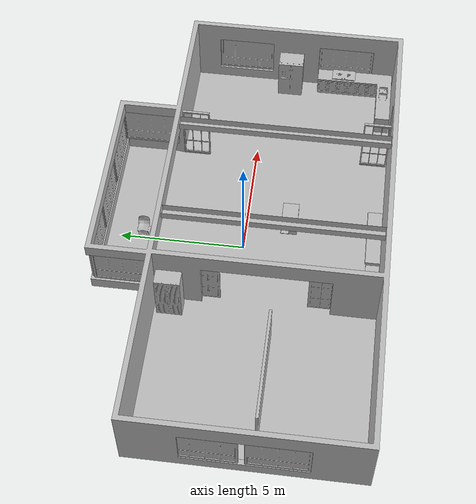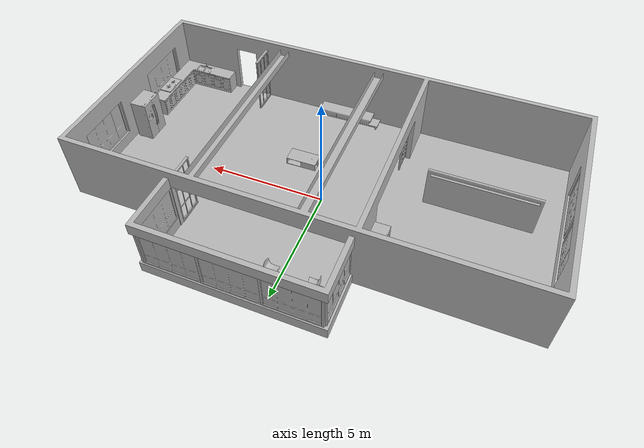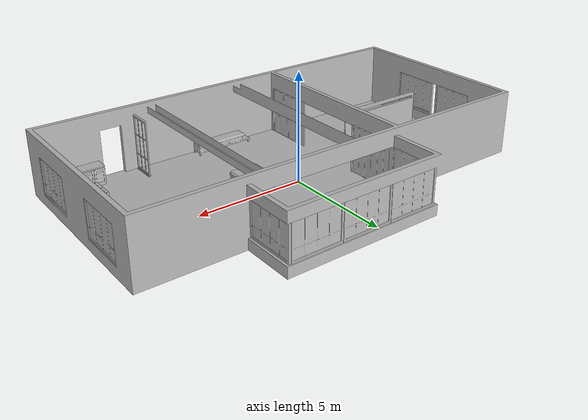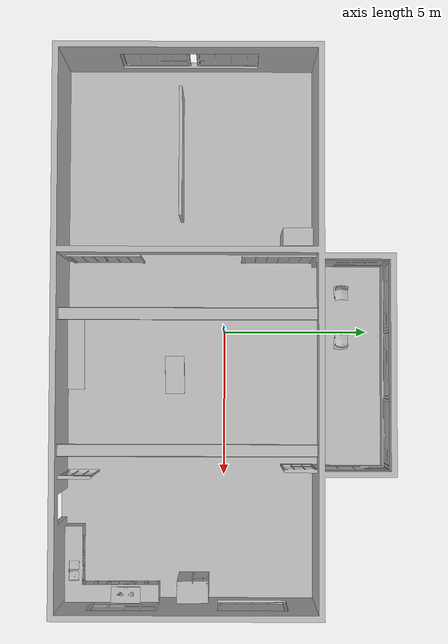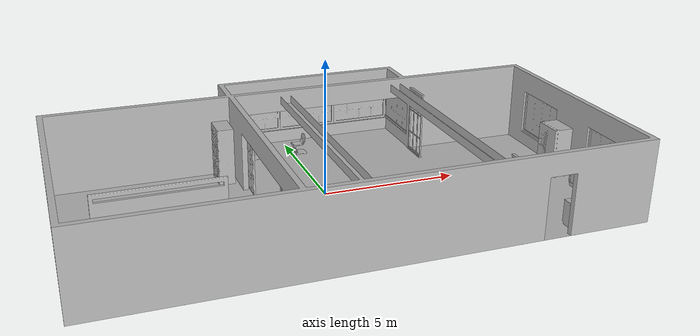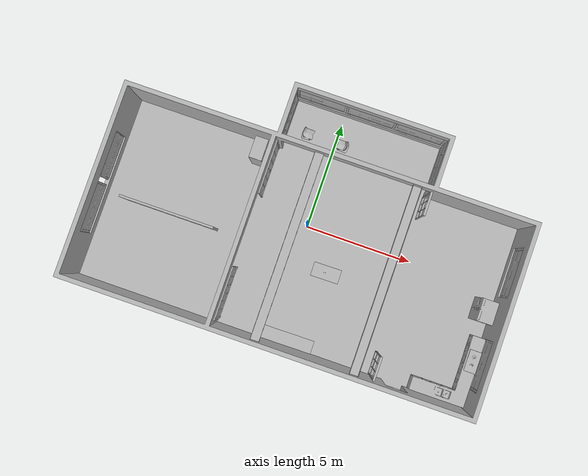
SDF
<sdf version="1.9">
 <world name="small_house">
  <physics name="4ms" type="ignored">
   <max_step_size>0.004</max_step_size>
   <real_time_factor>1</real_time_factor>
   <real_time_update_rate>250</real_time_update_rate>
  </physics>
  <plugin name="ignition::gazebo::systems::Physics" filename="ignition-gazebo-physics-system"/>
  <plugin name="ignition::gazebo::systems::UserCommands" filename="ignition-gazebo-user-commands-system"/>
  <plugin name="ignition::gazebo::systems::SceneBroadcaster" filename="ignition-gazebo-scene-broadcaster-system"/>
  <plugin name="ignition::gazebo::systems::Sensors" filename="ignition-gazebo-sensors-system">
   <render_engine>ogre2</render_engine>
  </plugin>
  <gravity>0 0 -9.8</gravity>
  <magnetic_field>6e-06 2.3e-05 -4.2e-05</magnetic_field>
  <atmosphere type="adiabatic"/>
  <scene><ambient>0.5 0.5 0.5 1</ambient><background>0.7 0.7 0.7 1</background><shadows>false</shadows></scene>
  <light name="sun" type="directional">
   <pose>0 0 10 0 0 0</pose>
   <cast_shadows>false</cast_shadows>
   <diffuse>0.8 0.8 0.8 1</diffuse>
   <specular>0.2 0.2 0.2 1</specular>
   <attenuation>
    <range>1000</range>
    <constant>0.9</constant>
    <linear>0.01</linear>
    <quadratic>0.001</quadratic>
   </attenuation>
   <direction>-0.5 0.1 -0.9</direction>
  </light>
  <model name="HouseWallB_01_001">
   <static>true</static>
   <include><uri>model://aws_robomaker_residential_HouseWallB_01</uri></include>
  </model>
  <model name="FloorB_01_001">
   <static>true</static>
   <include><uri>model://aws_robomaker_residential_FloorB_01</uri></include>
  </model>
  <model name="RoomWall_01_001">
   <static>true</static>
   <include><uri>model://aws_robomaker_residential_RoomWall_01</uri></include>
   <pose>-6.097550 -1.496180 0.028124 0 0 0</pose>
  </model>
  <model name="FoldingDoor_01_001">
   <static>true</static>
   <include><uri>model://aws_robomaker_residential_FoldingDoor_01</uri></include>
   <pose>-2.461096 1.844219 0.041881 0 0 0</pose>
  </model>
  <model name="FoldingDoor_01_002">
   <static>true</static>
   <include><uri>model://aws_robomaker_residential_FoldingDoor_01</uri></include>
   <pose>-2.461096 -4.053320 0.041881 0 0 0</pose>
  </model>
  <model name="FoldingDoor_02_001">
   <static>true</static>
   <include><uri>model://aws_robomaker_residential_FoldingDoor_02</uri></include>
   <pose>4.674231 2.46451 0 0 0 3.14159</pose>
  </model>
  <model name="FoldingDoor_02_002">
   <static>true</static>
   <include><uri>model://aws_robomaker_residential_FoldingDoor_02</uri></include>
   <pose>4.8912 -4.84968 0 0 0 0</pose>
  </model>
  <model name="RoomWindow_01_001">
   <static>true</static>
   <include><uri>model://aws_robomaker_residential_RoomWindow_01</uri></include>
   <pose>-9.418600 0.203760 0.502739 0 0 0</pose>
  </model>
  <model name="RoomWindow_01_002">
   <static>true</static>
   <include><uri>model://aws_robomaker_residential_RoomWindow_01</uri></include>
   <pose>-9.418600 -2.374090 0.502739 0 0 0</pose>
  </model>
  <model name="RoomWindow_01_003">
   <static>true</static>
   <include><uri>model://aws_robomaker_residential_RoomWindow_01</uri></include>
   <pose>9.422616 -3.373981 0.502739 0 0 -3.136099</pose>
  </model>
  <model name="RoomWindow_01_004">
   <static>true</static>
   <include><uri>model://aws_robomaker_residential_RoomWindow_01</uri></include>
   <pose>9.422558 0.968520 0.496581 0 0 -3.136099</pose>
  </model>
  <model name="RoomWindow_01_005">
   <static>true</static>
   <include><uri>model://aws_robomaker_residential_RoomWindow_01</uri></include>
   <pose>4.722317 4.470281 0.502739 0 0 -3.136099</pose>
  </model>
  <model name="RoomWindow_01_006">
   <static>true</static>
   <include><uri>model://aws_robomaker_residential_RoomWindow_01</uri></include>
   <pose>3.488520 5.600688 0.502739 0 0 -1.566274</pose>
  </model>
  <model name="RoomWindow_01_007">
   <static>true</static>
   <include><uri>model://aws_robomaker_residential_RoomWindow_01</uri></include>
   <pose>1.140949 5.600688 0.502739 0 0 -1.566274</pose>
  </model>
  <model name="RoomWindow_01_008">
   <static>true</static>
   <include><uri>model://aws_robomaker_residential_RoomWindow_01</uri></include>
   <pose>-1.199340 5.600688 0.502739 0 0 -1.566274</pose>
  </model>
  <model name="RoomWindow_01_009">
   <static>true</static>
   <include><uri>model://aws_robomaker_residential_RoomWindow_01</uri></include>
   <pose>-2.396624 4.387607 0.502739 0 0 0</pose>
  </model>
  <model name="CoffeeTable_01_001">
   <static>true</static>
   <include><uri>model://aws_robomaker_residential_CoffeeTable_01</uri></include>
   <pose>1.512301 -1.733438 0.041983 0.0 0.0 0.01000</pose>
  </model>
  <model name="TVCabinet_01_001">
   <static>true</static>
   <include><uri>model://aws_robomaker_residential_TVCabinet_01</uri></include>
   <pose>0.629509 -5.183576 -0.017049 0 0 1.5792</pose>
  </model>
  <model name="Refrigerator_01_001">
   <static>true</static>
   <include><uri>model://aws_robomaker_residential_Refrigerator_01</uri></include>
   <pose>8.702731 -1.032031 0 0 0 -1.563499</pose>
  </model>
  <model name="KitchenCabinet_01_001">
   <static>true</static>
   <include><uri>model://aws_robomaker_residential_KitchenCabinet_01</uri></include>
   <pose>8.002009 -3.836509 0.012068 0 0 -3.140001</pose>
  </model>
  <model name="CookingBench_01_001">
   <static>true</static>
   <include><uri>model://aws_robomaker_residential_CookingBench_01</uri></include>
   <pose>9.038383 -3.351140 0.903610 0 0 3.137133</pose>
  </model>
  <model name="Wardrobe_01_001">
   <static>true</static>
   <include><uri>model://aws_robomaker_residential_Wardrobe_01</uri></include>
   <pose>-3.146710 2.476204 0.000704 0 0 -1.569673</pose>
  </model>
  <model name="ChairD_01_001">
   <static>true</static>
   <include><uri>model://aws_robomaker_residential_ChairD_01</uri></include>
   <pose>-1.380775 4.104456 0 0 0 0</pose>
  </model>
  <model name="ChairD_01_002">
   <static>true</static>
   <include><uri>model://aws_robomaker_residential_ChairD_01</uri></include>
   <pose>0.325214 4.104456 0 0 0 -3.138741</pose>
  </model>
  <light name="LivingRoom_CeilingLight_0" type="point">
   <pose>1.194296 4.155759 2.2 0 0 0</pose>
   <diffuse>0.5 0.5 0.5 1</diffuse>
   <specular>0.1 0.1 0.1 1</specular>
   <attenuation>
    <range>20</range>
    <constant>0.32</constant>
    <linear>0.01</linear>
    <quadratic>0.03</quadratic>
   </attenuation>
   <cast_shadows>false</cast_shadows>
   <direction>0 0 -1</direction>
  </light>
  <light name="LivingRoom_CeilingLight_1" type="point">
   <pose>1.194296 -1.589959 2.2 0 0 0</pose>
   <diffuse>0.5 0.5 0.5 1</diffuse>
   <specular>0.1 0.1 0.1 1</specular>
   <attenuation>
    <range>20</range>
    <constant>0.05</constant>
    <linear>0.01</linear>
    <quadratic>0.09</quadratic>
   </attenuation>
   <cast_shadows>false</cast_shadows>
   <direction>0 0 -1</direction>
  </light>
  <light name="BedRoom_CeilingLight_0" type="point">
   <pose>-6.451061 -0.692040 2.000000 0 0 0</pose>
   <diffuse>0.5 0.5 0.5 1</diffuse>
   <specular>0.1 0.1 0.1 1</specular>
   <attenuation>
    <range>20</range>
    <constant>0.32</constant>
    <linear>0.01</linear>
    <quadratic>0.03</quadratic>
   </attenuation>
   <cast_shadows>false</cast_shadows>
   <direction>0 0 -1</direction>
  </light>
  <light name="Kitchen_CeilingLight_0" type="point">
   <pose>7.8582 -1.5905 2.280000 0 0 0</pose>
   <diffuse>0.5 0.5 0.5 1</diffuse>
   <specular>0.1 0.1 0.1 1</specular>
   <attenuation>
    <range>20</range>
    <constant>0.3</constant>
    <linear>0.01</linear>
    <quadratic>0.01</quadratic>
   </attenuation>
   <cast_shadows>false</cast_shadows>
   <direction>0 0 -1</direction>
  </light>
 </world>
</sdf>

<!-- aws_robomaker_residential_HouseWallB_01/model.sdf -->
<sdf version="1.6">
  <model name="aws_robomaker_residential_HouseWallB_01">
    <link name="link">
      <inertial>
        <mass>1</mass>
        <inertia>
          <ixx>0.166667</ixx>
          <ixy>0</ixy>
          <ixz>0</ixz>
          <iyy>0.166667</iyy>
          <iyz>0</iyz>
          <izz>0.166667</izz>
        </inertia>
      </inertial>
      <collision name="collision">
        <geometry>
          <mesh>
            <uri>model://aws_robomaker_residential_HouseWallB_01/meshes/aws_HouseWallB_01_collision.DAE</uri>
            <scale>1 1 1</scale>
          </mesh>
        </geometry>
      </collision>
      <visual name="visual">
	    <geometry>
          <mesh>
            <uri>model://aws_robomaker_residential_HouseWallB_01/meshes/aws_HouseWallB_01_visual.DAE</uri>
          </mesh>
        </geometry>
      <meta> <layer> 2 </layer></meta>
</visual>
    </link>
<static>1</static>
  </model>
</sdf>

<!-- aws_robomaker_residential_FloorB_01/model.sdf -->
<sdf version="1.6">
  <model name="aws_robomaker_residential_FloorB_01">
    <link name="link">
      <inertial>
        <mass>100</mass>
        <inertia>
          <ixx>16.666667</ixx>
          <ixy>0</ixy>
          <ixz>0</ixz>
          <iyy>16.666667</iyy>
          <iyz>0</iyz>
          <izz>16.666667</izz>
        </inertia>
      </inertial>

      <collision name="collision">
        <pose>0 0 -0.05 0 0 0</pose>
        <geometry>
          <box><size>22 14 0.1</size></box>
        </geometry>
        <surface>
          <friction>
            <ode>
              <mu>100</mu>
              <mu2>50</mu2>
            </ode>
          </friction>
        </surface>
      </collision>

      <visual name="visual">
	    <geometry>
          <mesh>
            <uri>model://aws_robomaker_residential_FloorB_01/meshes/aws_FloorB_01_visual.DAE</uri>
          </mesh>
        </geometry>
      <meta> <layer> 1 </layer></meta>
</visual>
    </link>

	<static>1</static>
  </model>
</sdf>

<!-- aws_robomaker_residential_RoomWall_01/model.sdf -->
<sdf version="1.6">
  <model name="aws_robomaker_residential_RoomWall_01">
    <link name="link">
      <inertial>
        <mass>100</mass>
        <inertia>
          <ixx>16.666667</ixx>
          <ixy>0</ixy>
          <ixz>0</ixz>
          <iyy>16.666667</iyy>
          <iyz>0</iyz>
          <izz>16.666667</izz>
        </inertia>
      </inertial>
      <collision name="collision">
        <geometry>
          <mesh>
            <uri>model://aws_robomaker_residential_RoomWall_01/meshes/aws_RoomWall_01_collision.DAE</uri>
            <scale>1 1 1</scale>
          </mesh>
        </geometry>
      </collision>
      <visual name="visual">
	    <geometry>
          <mesh>
            <uri>model://aws_robomaker_residential_RoomWall_01/meshes/aws_RoomWall_01_visual.DAE</uri>
          </mesh>
        </geometry>
      <meta> <layer> 2 </layer></meta>
</visual>
    </link>
  <static>1</static>
  </model>
</sdf>

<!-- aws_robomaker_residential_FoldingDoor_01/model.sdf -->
<sdf version="1.6">
  <model name="aws_robomaker_residential_FoldingDoor_01">
    <link name="link">
      <inertial>
        <mass>1</mass>
        <inertia>
          <ixx>0.166667</ixx>
          <ixy>0</ixy>
          <ixz>0</ixz>
          <iyy>0.166667</iyy>
          <iyz>0</iyz>
          <izz>0.166667</izz>
        </inertia>
      </inertial>
      <collision name="collision">
        <geometry>
          <mesh>
            <uri>model://aws_robomaker_residential_FoldingDoor_01/meshes/aws_FoldingDoor_01_collision.DAE</uri>
            <scale>1 1 1</scale>
          </mesh>
        </geometry>
      </collision>
      <visual name="visual">
	    <geometry>
          <mesh>
            <uri>model://aws_robomaker_residential_FoldingDoor_01/meshes/aws_FoldingDoor_01_visual.DAE</uri>
          </mesh>
        </geometry>
      <meta> <layer> 2 </layer></meta>
</visual>
    </link>
	<static>1</static>
  </model>
</sdf>

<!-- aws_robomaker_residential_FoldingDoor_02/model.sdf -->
<sdf version="1.6">
  <model name="aws_robomaker_residential_FoldingDoor_02">
    <link name="link">
      <inertial>
        <mass>1</mass>
        <inertia>
          <ixx>0.166667</ixx>
          <ixy>0</ixy>
          <ixz>0</ixz>
          <iyy>0.166667</iyy>
          <iyz>0</iyz>
          <izz>0.166667</izz>
        </inertia>
      </inertial>
      <collision name="collision">
        <geometry>
          <mesh>
            <uri>model://aws_robomaker_residential_FoldingDoor_02/meshes/aws_FoldingDoor_02_collision.DAE</uri>
            <scale>1 1 1</scale>
          </mesh>
        </geometry>
      </collision>
      <visual name="visual">
	    <geometry>
          <mesh>
            <uri>model://aws_robomaker_residential_FoldingDoor_02/meshes/aws_FoldingDoor_02_visual.DAE</uri>
          </mesh>
        </geometry>
      <meta> <layer> 2 </layer></meta>
</visual>
    </link>
<static>1</static>
  </model>
</sdf>

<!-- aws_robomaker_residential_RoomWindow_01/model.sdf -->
<sdf version="1.6">
  <model name="aws_robomaker_residential_RoomWindow_01">
    <link name="link">
      <inertial>
        <mass>1</mass>
        <inertia>
          <ixx>0.166667</ixx>
          <ixy>0</ixy>
          <ixz>0</ixz>
          <iyy>0.166667</iyy>
          <iyz>0</iyz>
          <izz>0.166667</izz>
        </inertia>
      </inertial>
      <collision name="collision">
        <geometry>
          <mesh>
            <uri>model://aws_robomaker_residential_RoomWindow_01/meshes/aws_RoomWindow_01_collision.DAE</uri>
            <scale>1 1 1</scale>
          </mesh>
        </geometry>
      </collision>
      <visual name="visual">
	    <geometry>
          <mesh>
            <uri>model://aws_robomaker_residential_RoomWindow_01/meshes/aws_RoomWindow_01_visual.DAE</uri>
          </mesh>
        </geometry>
      <meta> <layer> 2 </layer></meta>
</visual>
    </link>
	<static>1</static>
  </model>
</sdf>

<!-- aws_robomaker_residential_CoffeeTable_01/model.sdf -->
<sdf version="1.6">
  <model name="aws_robomaker_residential_CoffeeTable_01">
    <link name="link">
      <inertial>
        <mass>21.7</mass>

        <inertia>
          <ixx>0.8137499999999998</ixx>
          <ixy>0</ixy>
          <ixz>0</ixz>
          <iyy>2.76675</iyy>
          <iyz>0</iyz>
          <izz>3.254</izz>
        </inertia>

      </inertial>

      <collision name="collision">
        <pose>0 0 0.225 0 0 0</pose>
        <geometry>
          <box><size>1.2 0.6 0.45</size></box>
        </geometry>
      </collision>

      <visual name="visual">
	    <geometry>
          <mesh>
            <uri>model://aws_robomaker_residential_CoffeeTable_01/meshes/aws_CoffeeTable_01_visual.DAE</uri>
          </mesh>
        </geometry>
      <meta> <layer> 1 </layer></meta>
</visual>
    </link>
    <static>1</static>
  </model>
</sdf>

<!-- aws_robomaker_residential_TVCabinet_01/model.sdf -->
<sdf version="1.6">
  <model name="aws_robomaker_residential_TVCabinet_01">
    <link name="link">

      <inertial>
        <mass>59.2</mass>

        <inertia>
          <ixx>30.4</ixx>
          <ixy>0</ixy>
          <ixz>0</ixz>
          <iyy>2.56</iyy>
          <iyz>0</iyz>
          <izz>31.38</izz>
        </inertia>

      </inertial>

      <collision name="collision">
        <pose>0 0 0.2 0 0 0</pose>
        <geometry>
          <box><size>0.6 2.4 0.4</size></box>
        </geometry>
      </collision>

      <visual name="visual">
	    <geometry>
          <mesh>
            <uri>model://aws_robomaker_residential_TVCabinet_01/meshes/aws_TVCabinet_01_visual.DAE</uri>
          </mesh>
        </geometry>
      <meta> <layer> 1 </layer></meta>
</visual>
    </link>
  <static>1</static>
  </model>
</sdf>

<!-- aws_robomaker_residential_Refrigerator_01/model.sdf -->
<sdf version="1.6">
  <model name="aws_robomaker_residential_Refrigerator_01">
    <link name="link">
      <inertial>
        <mass>1</mass>
        <inertia>
          <ixx>0.166667</ixx>
          <ixy>0</ixy>
          <ixz>0</ixz>
          <iyy>0.166667</iyy>
          <iyz>0</iyz>
          <izz>0.166667</izz>
        </inertia>
      </inertial>
      <collision name="collision">
        <pose>0 0 0.875 0 0 0</pose>
        <geometry>
          <box><size>0.65 0.65 1.75</size></box>
        </geometry>
      </collision>
      <visual name="visual">
	    <geometry>
          <mesh>
            <uri>model://aws_robomaker_residential_Refrigerator_01/meshes/aws_Refrigerator_01_visual.DAE</uri>
          </mesh>
        </geometry>
      <meta> <layer> 1 </layer></meta>
</visual>
    </link>
    <static>1</static>
  </model>
</sdf>

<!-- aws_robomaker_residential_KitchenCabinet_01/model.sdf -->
<sdf version="1.6">
  <model name="aws_robomaker_residential_KitchenCabinet_01">
    <link name="link">
      <inertial>
        <mass>1</mass>
        <inertia>
          <ixx>0.166667</ixx>
          <ixy>0</ixy>
          <ixz>0</ixz>
          <iyy>0.166667</iyy>
          <iyz>0</iyz>
          <izz>0.166667</izz>
        </inertia>
      </inertial>
      <collision name="collision">
        <pose>0 0 0.45 0 0 0</pose>
        <geometry>
          <box><size>2.4 0.55 0.9</size></box>
        </geometry>
      </collision>
      <visual name="visual">
	    <geometry>
          <mesh>
            <uri>model://aws_robomaker_residential_KitchenCabinet_01/meshes/aws_KitchenCabinet_01_visual.DAE</uri>
          </mesh>
        </geometry>
      <meta> <layer> 1 </layer></meta>
</visual>
    </link>

    <static>1</static>
  </model>
</sdf>

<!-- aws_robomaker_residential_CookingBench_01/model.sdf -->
<sdf version="1.6">
  <model name="aws_robomaker_residential_CookingBench_01">
    <link name="link">
      <inertial>
        <mass>1</mass>
        <inertia>
          <ixx>0.166667</ixx>
          <ixy>0</ixy>
          <ixz>0</ixz>
          <iyy>0.166667</iyy>
          <iyz>0</iyz>
          <izz>0.166667</izz>
        </inertia>
      </inertial>
      <collision name="collision">
        <pose>0 0 0.45 0 0 0</pose>
        <geometry>
          <box><size>0.7 0.55 0.9</size></box>
        </geometry>
      </collision>
      <visual name="visual">
	    <geometry>
          <mesh>
            <uri>model://aws_robomaker_residential_CookingBench_01/meshes/aws_CookingBench_01_visual.DAE</uri>
          </mesh>
        </geometry>
      <meta> <layer> 1 </layer></meta>
</visual>
    </link>
  </model>
</sdf>

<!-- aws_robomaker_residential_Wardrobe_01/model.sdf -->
<sdf version="1.6">
  <model name="aws_robomaker_residential_Wardrobe_01">
    <link name="link">
      <inertial>
        <mass>51.7</mass>
        <inertia>
          <ixx>8.616667</ixx>
          <ixy>0</ixy>
          <ixz>0</ixz>
          <iyy>8.616667</iyy>
          <iyz>0</iyz>
          <izz>8.616667</izz>
        </inertia>
      </inertial>
      <collision name="collision">
        <pose>0 0 1.0 0 0 0</pose>
        <geometry>
          <box><size>1.0 0.55 2.0</size></box>
        </geometry>
      </collision>
      <visual name="visual">
	    <geometry>
          <mesh>
            <uri>model://aws_robomaker_residential_Wardrobe_01/meshes/aws_Wardrobe_01_visual.DAE</uri>
          </mesh>
        </geometry>
      <meta> <layer> 1 </layer></meta>
</visual>
    </link>
    <static>1</static>
  </model>
</sdf>

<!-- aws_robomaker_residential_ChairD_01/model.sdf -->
<sdf version="1.6">
  <model name="aws_robomaker_residential_ChairD_01">
    <link name="link">

      <inertial>
        <mass>4.5</mass>
          <inertia>
            <ixy>0</ixy>
            <ixz>0</ixz>
            <iyz>0</iyz>
            <ixx>0.217</ixx>
            <iyy>0.217</iyy>
            <izz>0.067</izz>
          </inertia>
      </inertial>

      <collision name="collision">
        <pose>0 0 0.425 0 0 0</pose>
        <geometry>
          <box><size>0.50 0.50 0.85</size></box>
        </geometry>
      </collision>
      <visual name="visual">
	    <geometry>
          <mesh>
            <uri>model://aws_robomaker_residential_ChairD_01/meshes/aws_ChairD_01_visual.DAE</uri>
          </mesh>
        </geometry>
      <meta> <layer> 1 </layer></meta>
</visual>
    </link>
  </model>
</sdf>
